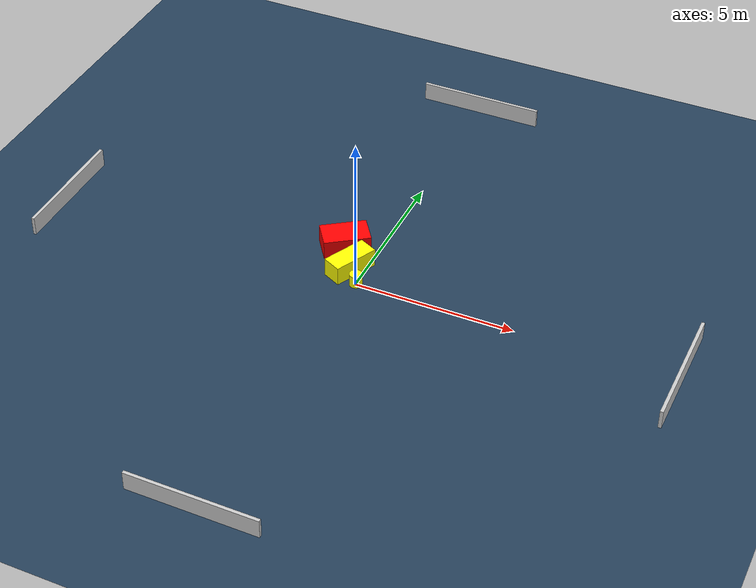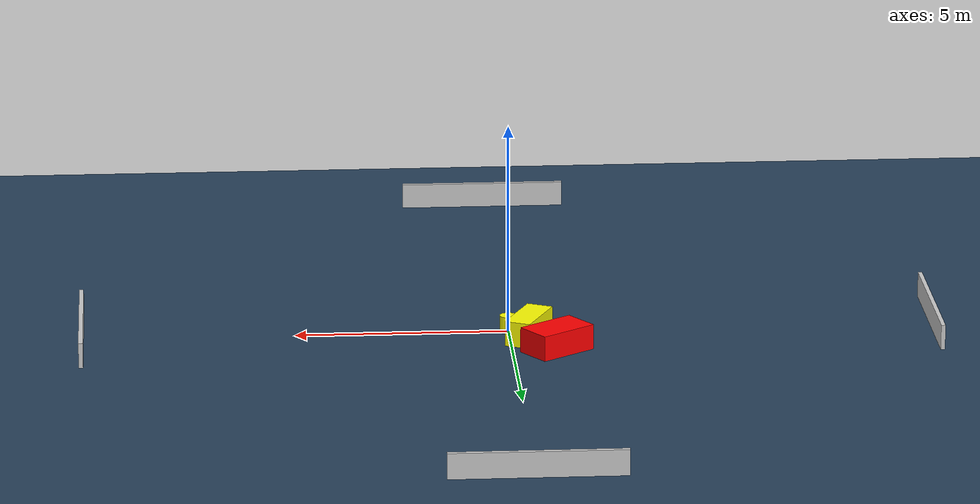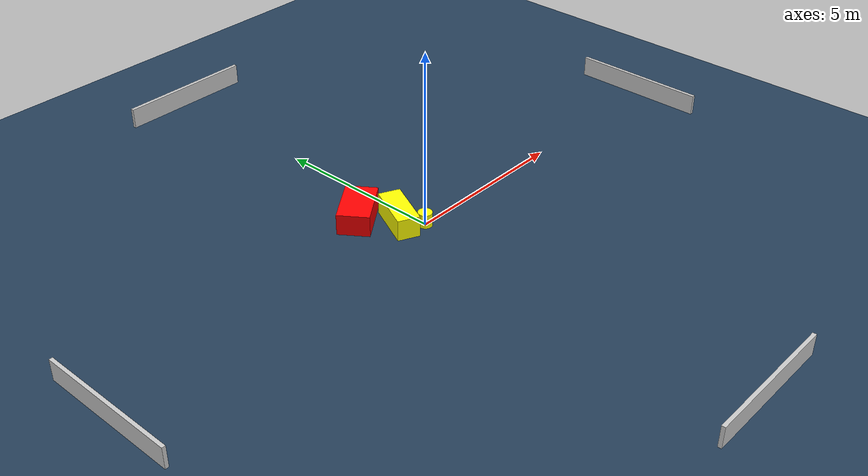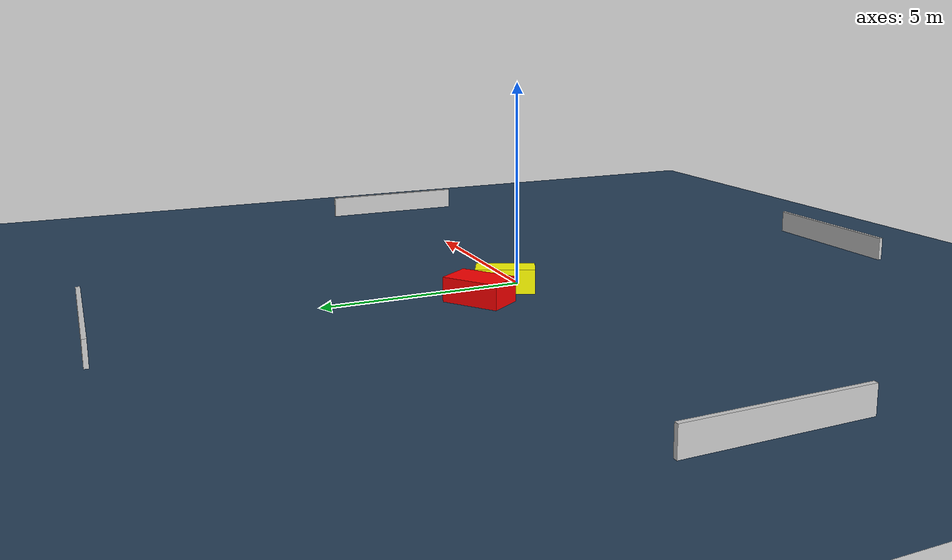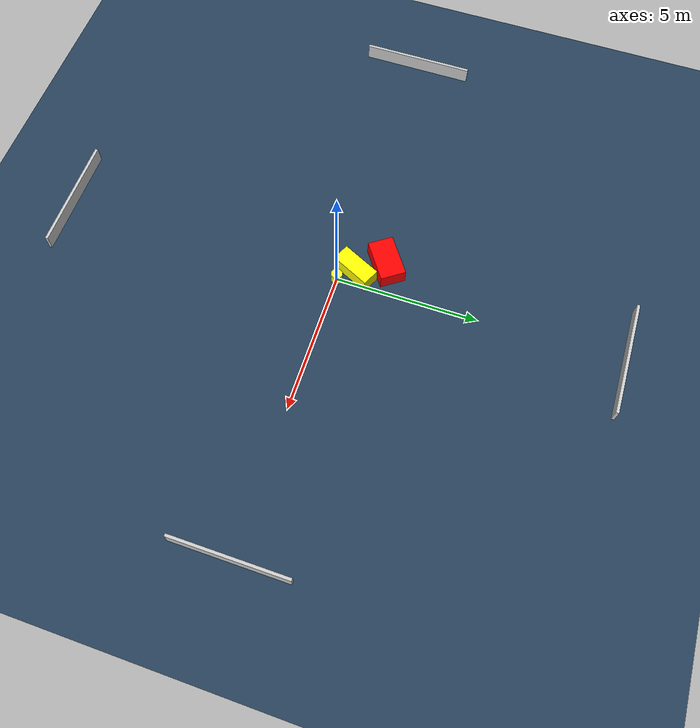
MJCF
<?xml version="1.0" ?>
<mujoco model="generated_environment">
  <option timestep="0.01" integrator="RK4" cone="elliptic"/>
  <default>
    <geom density="1"/>
  </default>
  <asset>
    <texture builtin="gradient" height="3072" name="skybox" rgb1="0.3 0.5 0.7" rgb2="0 0 0" type="skybox" width="512"/>
    <texture builtin="checker" height="300" name="groundplane" rgb1="0.2 0.3 0.4" rgb2="0.1 0.2 0.3" type="2d" width="300"/>
    <material name="groundplane" reflectance="0.2" texrepeat="5 5" texture="groundplane"/>
  </asset>
  <worldbody>
    <light dir="0 0 -1" directional="true" pos="0 0 1.5"/>
    <geom condim="3" friction="0.5 0.005 0.001" material="groundplane" name="floor" pos="0 0 0" size="0 0 0.05" type="plane"/>
    <body name="walls">
      <geom name="wall_1" condim="4" pos="-10.0 0.0 0.3" rgba="0.800000011920929 0.800000011920929 0.800000011920929 1.0" size="0.05 2.0 0.3" type="box"/>
      <geom name="wall_2" condim="4" pos="10.0 0.0 0.3" rgba="0.800000011920929 0.800000011920929 0.800000011920929 1.0" size="0.05 2.0 0.3" type="box"/>
      <geom name="wall_3" condim="4" pos="0.0 -10.0 0.3" rgba="0.800000011920929 0.800000011920929 0.800000011920929 1.0" size="2.0 0.05 0.3" type="box"/>
      <geom name="wall_4" condim="4" pos="0.0 10.0 0.3" rgba="0.800000011920929 0.800000011920929 0.800000011920929 1.0" size="2.0 0.05 0.3" type="box"/>
    </body>
    <body name="robot">
      <joint name="joint_x" type="slide" pos="0 0 0" axis="1 0 0"/>
      <joint name="joint_y" type="slide" pos="0 0 0" axis="0 1 0"/>
      <geom name="robot" type="cylinder" pos="0.0 0.0 0.2" size="0.2 0.2 0.0" mass="5.0" friction="1.0 0.005 0.0001" condim="4" rgba="1.0 1.0 0.0 1.0"/>
    </body>
    <body name="obstacle_1_movable">
      <geom name="obstacle_1_movable" condim="4" pos="-0.4426483843851865 0.5351258400873531 0.3" euler="0 0 244.45319293671787" friction="0.0 0.005 0.001" rgba="1.0 1.0 0.0 1.0" size="0.7216924937359119 0.3121307327557858 0.3" type="box" mass="0.1"/>
      <joint type="free"/>
    </body>
    <body name="obstacle_2_static">
      <geom name="obstacle_2_static" condim="4" pos="-1.038710205440104 1.4674270468062132 0.3" euler="0 0 215.2040247418075" friction="0.0 0.005 0.001" rgba="1.0 0.0 0.0 1.0" size="0.7293616040817996 0.44583132660746083 0.3" type="box"/>
    </body>
  </worldbody>
  <actuator>
    <motor name="actuator_x" joint="joint_x" gear="1" ctrlrange="-1 1"/>
    <motor name="actuator_y" joint="joint_y" gear="1" ctrlrange="-1 1"/>
  </actuator>
</mujoco>
